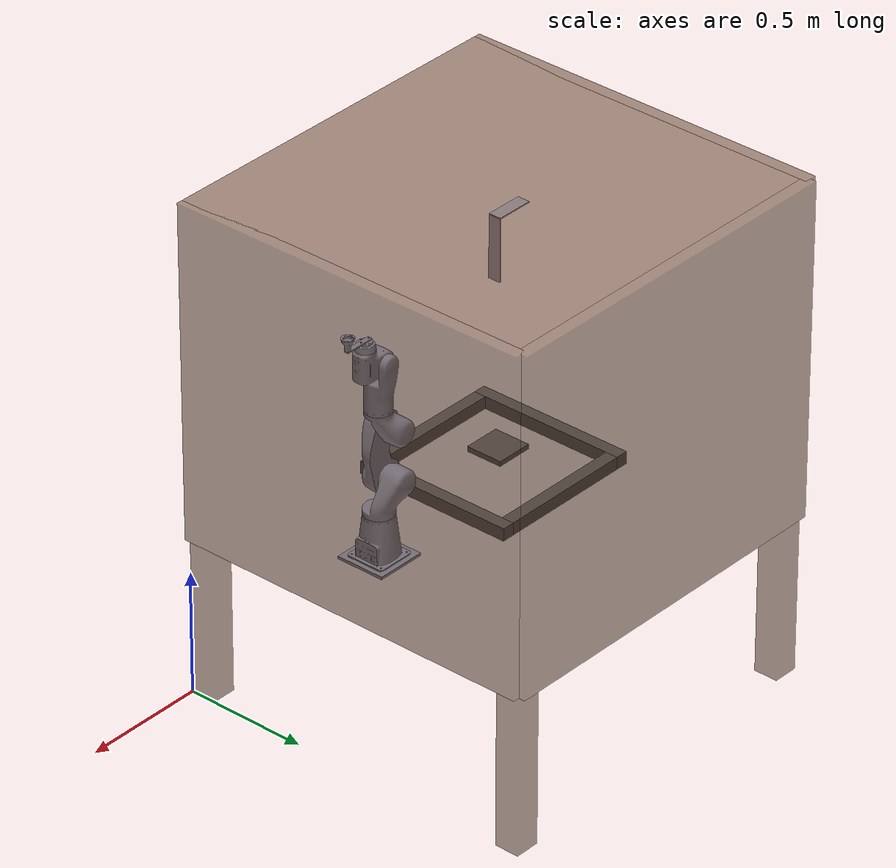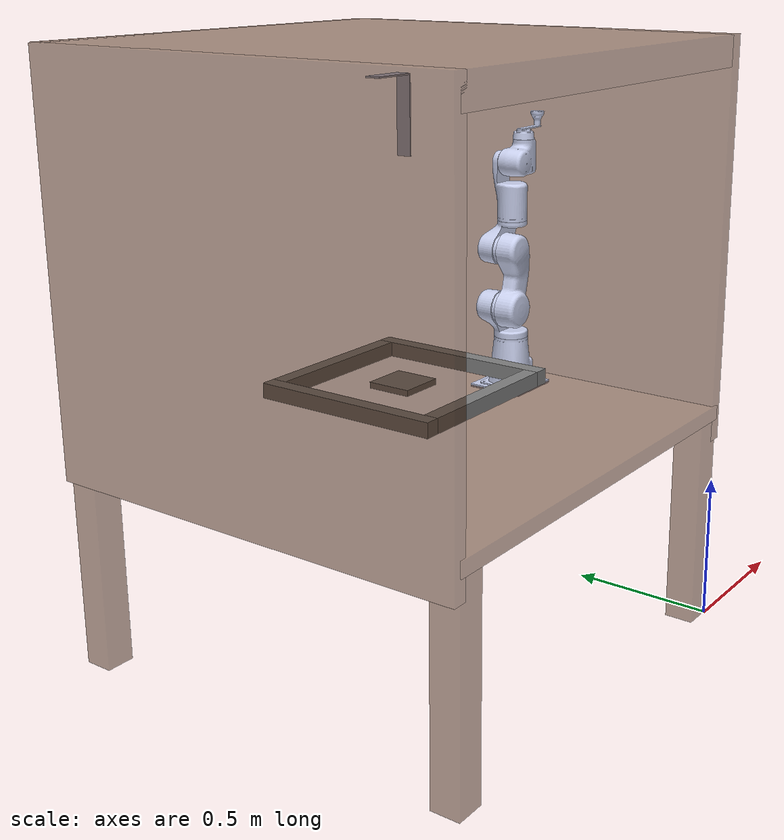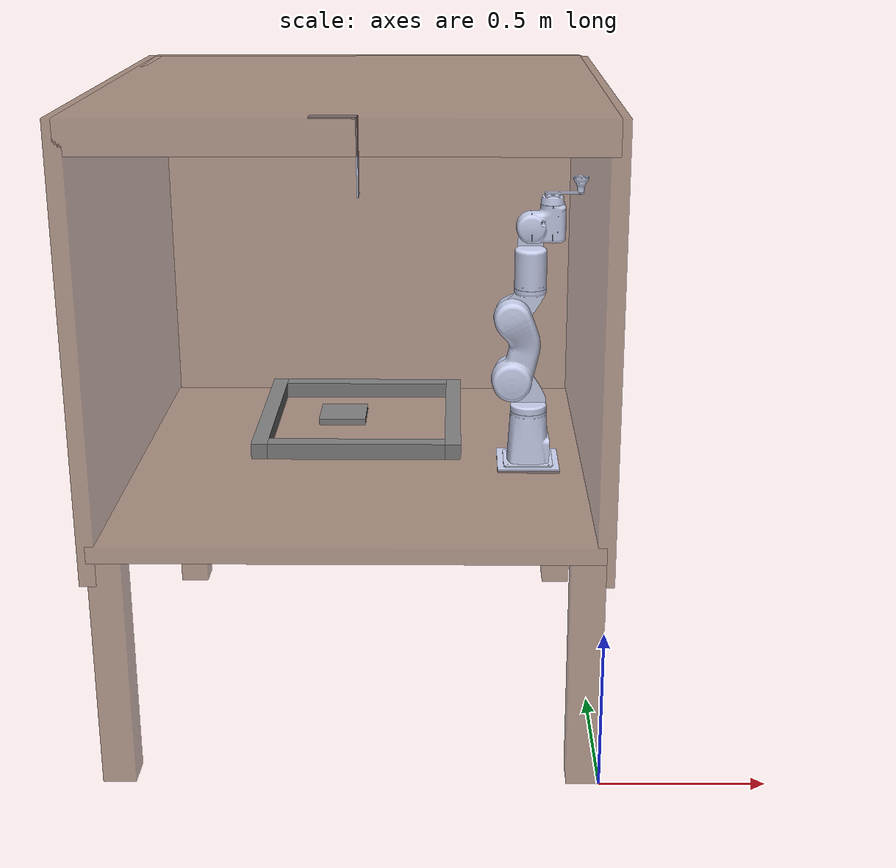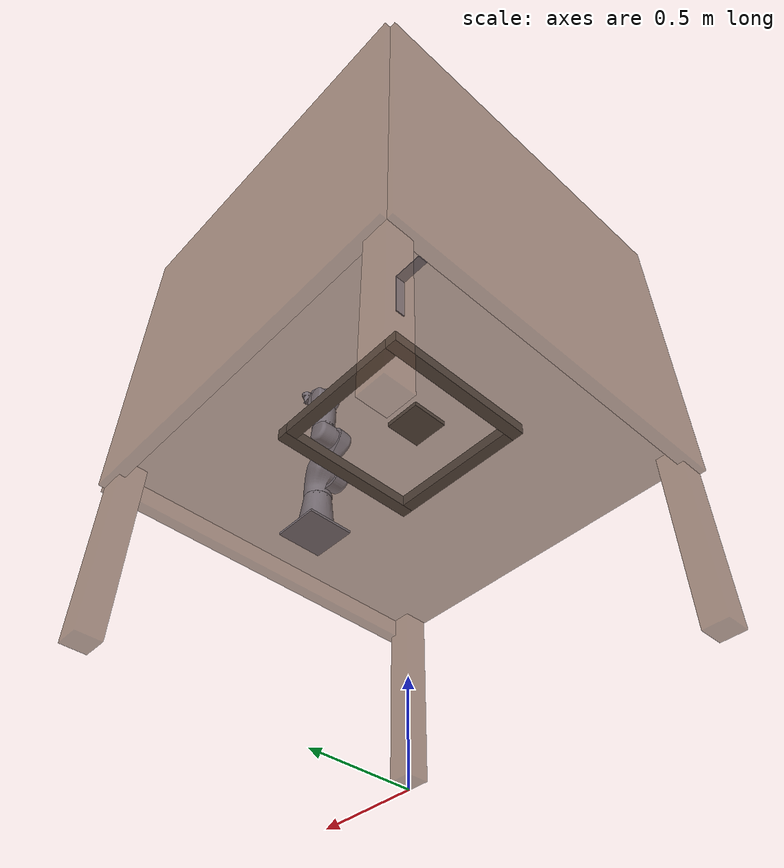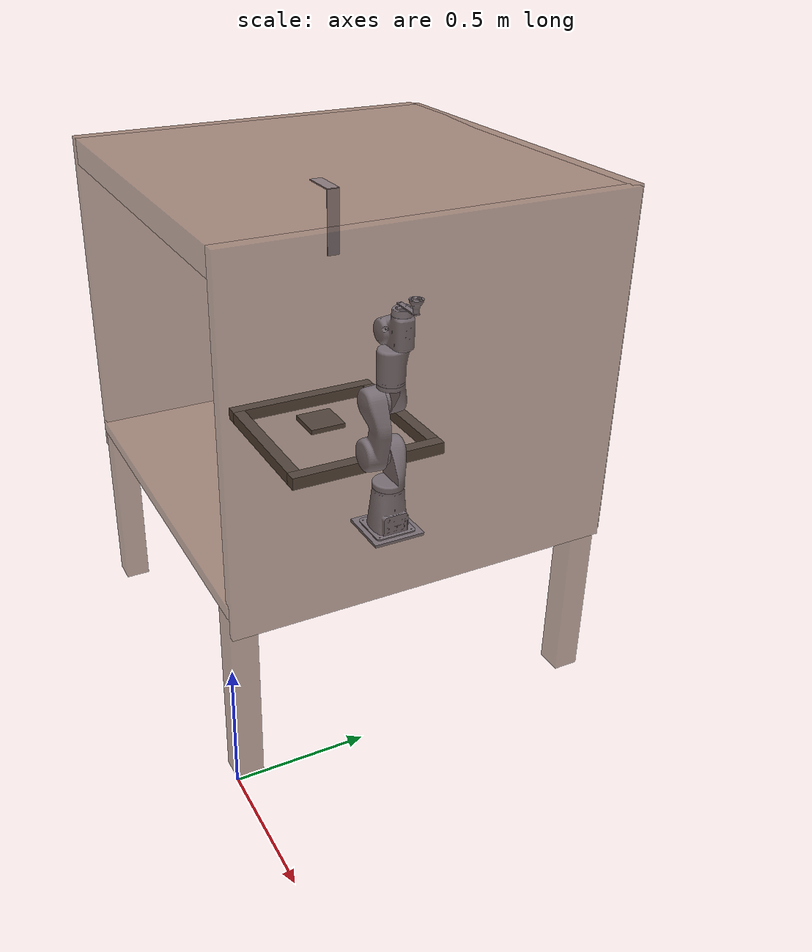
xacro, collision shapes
<?xml version="1.0" ?>
<!-- This file has been used for Hardware, the other "without_rail" files are just used for simulation -->

<robot name="eva_arm">

  <!-- World link -->
  <link name="world"/>

  <!-- Table link: -->
      <!-- The table_link is created such as it has 4 legs and 5 sides, one side is open -->
  <link name="table_link">
    <visual>
      <origin rpy="0 0 0" xyz="-0.75 0.75 1.95"/>
      <geometry>
        <box size="1.5 1.5 0.1"/>
      </geometry>
      <material name="wood">
        <color rgba="0.3 0.15 0.05 0.5"/>  <!--Change alpha value b/w 0 (transparent) and 1(opaque) -->
      </material>
    </visual>

    <visual>
      <origin rpy="0 0 0" xyz="-0.75 0.725 0.75"/>
      <geometry>
        <box size="1.5 1.46 0.05"/>
      </geometry>
      <material name="wood">
        <color rgba="0.55 0.27 0.07 0.1"/>
      </material>
    </visual>

    <visual>
      <origin rpy="0 0 0" xyz="0.0 0.75 1.325"/>
      <geometry>
        <box size="0.05 1.5 1.35"/>
      </geometry>
      <material name="wood">
        <color rgba="0.55 0.27 0.07 0.1"/>
      </material>
    </visual>

    <visual>
      <origin rpy="0 0 0" xyz="-1.5 0.75 1.325"/>
      <geometry>
        <box size="0.05 1.5 1.35"/>
      </geometry>
      <material name="wood">
        <color rgba="0.55 0.27 0.07 0.1"/>
      </material>
    </visual>

    <visual>
      <origin rpy="0 0 0" xyz="-0.75 1.5 1.325"/>
      <geometry>
        <box size="1.5 0.05 1.35"/>
      </geometry>
      <material name="wood">
        <color rgba="0.55 0.27 0.07 0.1"/>
      </material>
    </visual>

    <visual>
      <origin rpy="0 0 0" xyz="-1.45 0.05 0.375"/>
      <geometry>
        <box size="0.1 0.1 0.75"/>
      </geometry>
      <material name="wood">
        <color rgba="0.55 0.27 0.07 1"/>
      </material>
    </visual>

    <visual>
      <origin rpy="0 0 0" xyz="-0.05 0.05 0.375"/>
      <geometry>
        <box size="0.1 0.1 0.75"/>
      </geometry>
      <material name="wood">
        <color rgba="0.55 0.27 0.07 1"/>
      </material>
    </visual>

    <visual>
      <origin rpy="0 0 0" xyz="-0.05 1.45 0.375"/>
      <geometry>
        <box size="0.1 0.1 0.75"/>
      </geometry>
      <material name="wood">
        <color rgba="0.55 0.27 0.07 1"/>
      </material>
    </visual>

    <visual>
      <origin rpy="0 0 0" xyz="-1.45 1.45 0.375"/>
      <geometry>
        <box size="0.1 0.1 0.75"/>
      </geometry>
      <material name="wood">
        <color rgba="0.55 0.27 0.07 1"/>
      </material>
    </visual>

    <!-- Collision elements (mirroring visuals 1:1) -->
    <collision>
      <origin rpy="0 0 0" xyz="-0.75 0.75 1.95"/>
      <geometry>
        <box size="1.5 1.5 0.1"/>
      </geometry>
    </collision>

    <collision>
      <origin rpy="0 0 0" xyz="-0.75 0.725 0.75"/>
      <geometry>
        <box size="1.5 1.46 0.05"/>
      </geometry>
    </collision>

    <collision>
      <origin rpy="0 0 0" xyz="0.0 0.75 1.325"/>
      <geometry>
        <box size="0.05 1.5 1.35"/>
      </geometry>
    </collision>

    <collision>
      <origin rpy="0 0 0" xyz="-1.5 0.75 1.325"/>
      <geometry>
        <box size="0.05 1.5 1.35"/>
      </geometry>
    </collision>

    <collision>
      <origin rpy="0 0 0" xyz="-0.75 1.5 1.325"/>
      <geometry>
        <box size="1.5 0.05 1.35"/>
      </geometry>
    </collision>

    <collision>
      <origin rpy="0 0 0" xyz="-1.45 0.05 0.375"/>
      <geometry>
        <box size="0.1 0.1 0.75"/>
      </geometry>
    </collision>

    <collision>
      <origin rpy="0 0 0" xyz="-0.05 0.05 0.375"/>
      <geometry>
        <box size="0.1 0.1 0.75"/>
      </geometry>
    </collision>

    <collision>
      <origin rpy="0 0 0" xyz="-0.05 1.45 0.375"/>
      <geometry>
        <box size="0.1 0.1 0.75"/>
      </geometry>
    </collision>

    <collision>
      <origin rpy="0 0 0" xyz="-1.45 1.45 0.375"/>
      <geometry>
        <box size="0.1 0.1 0.75"/>
      </geometry>
    </collision>

    <inertial>
      <origin rpy="0 0 0" xyz="-0.75 0.75 0.75"/>
      <mass value="10.0"/>
      <inertia ixx="0.1" ixy="0.0" ixz="0.0" iyy="0.1" iyz="0.0" izz="0.1"/>
    </inertial>
  </link>

  <joint name="world_to_table_joint" type="fixed">
    <parent link="world"/>
    <child link="table_link"/>
    <origin xyz="0.0 0.0 0.0" rpy="0 0 0"/>
  </joint>

  <!-- XY Plotter -->
      <!-- Boundary - Base Link -->
  <link name="boundary_link">
    <inertial>
      <mass value="10"/>
      <inertia ixx="0.4" ixy="0.0" ixz="0.0" iyy="0.4" iyz="0.0" izz="0.2"/>
    </inertial>
    <!-- Front Boundary -->
    <visual>
      <origin rpy="0 0 0" xyz="0.0 0.30 0.0"/>
      <geometry>
        <box size="0.55 0.05 0.05"/>
      </geometry>
      <material name="grey">
        <color rgba="0.5 0.5 0.5 1"/>
      </material>
    </visual>
    <!-- Back Boundary -->
    <visual>
      <origin rpy="0 0 0" xyz="0.0 -0.30 0.0"/>
      <geometry>
        <box size="0.55 0.05 0.05"/>
      </geometry>
      <material name="grey">
        <color rgba="0.5 0.5 0.5 1"/>
      </material>
    </visual>
    <!-- Left Boundary -->
    <visual>
      <origin rpy="0 0 0" xyz="-0.30 0.0 0.0"/>
      <geometry>
        <box size="0.05 0.65 0.05"/>
      </geometry>
      <material name="grey">
        <color rgba="0.5 0.5 0.5 1"/>
      </material>
    </visual>
    <!-- Right Boundary -->
    <visual>
      <origin rpy="0 0 0" xyz="0.30 0.0 0.0"/>
      <geometry>
        <box size="0.05 0.65 0.05"/>
      </geometry>
      <material name="grey">
        <color rgba="0.5 0.5 0.5 1"/>
      </material>
    </visual>

    <!-- Add collision -->
    <collision>
      <origin xyz="0.0 0.30 0.0"/>
      <geometry>
        <box size="0.55 0.05 0.05"/>
      </geometry>
    </collision>

    <collision>
      <origin xyz="0.0 -0.30 0.0"/>
      <geometry>
        <box size="0.55 0.05 0.05"/>
      </geometry>
    </collision>

    <collision>
      <origin xyz="-0.30 0.0 0.0"/>
      <geometry>
        <box size="0.05 0.65 0.05"/>
      </geometry>
    </collision>

    <collision>
      <origin xyz="0.30 0.0 0.0"/>
      <geometry>
        <box size="0.05 0.65 0.05"/>
      </geometry>
    </collision>
  </link>

  <!-- Link #2 (Slider Link) -->
  <link name="slider_link">
    <inertial>
      <mass value="0.18"/>
      <inertia ixx="0.0002835" ixy="0.0" ixz="0.0" iyy="0.0002835" iyz="0.0" izz="0.000324"/>
    </inertial>
    <collision>
      <geometry>
        <box size="0.001 0.001 0.001" />
      </geometry>
    </collision>
    <visual>
      <geometry>
        <box size="0.001 0.001 0.001"/>
      </geometry>
      <material name="red">
        <color rgba="1 0 0 1"/>
      </material>
    </visual>
  </link>

  <!-- Link #3 (Slider Link) -->
  <link name="second_link">
    <inertial>
      <mass value="0.18"/>
      <inertia ixx="0.0002835" ixy="0.0" ixz="0.0" iyy="0.0002835" iyz="0.0" izz="0.000324"/>
    </inertial>
    <collision>
      <geometry>
        <box size="0.001 0.001 0.001" />
      </geometry>
    </collision>
    <visual>
      <geometry>
        <box size="0.001 0.001 0.001"/>
      </geometry>
      <material name="green">
        <color rgba="0 1 0 1"/>
      </material>
    </visual>
  </link>

  <!-- Link #4 (Plate) -->
  <link name="plate_link">
    <inertial>
      <mass value="0.5"/>
      <inertia ixx="0.01" ixy="0.0" ixz="0.0" iyy="0.01" iyz="0.0" izz="0.01"/>
    </inertial>
    <collision>
      <geometry>
        <box size="0.15 0.15 0.02" />
      </geometry>
    </collision>
    <visual>
      <geometry>
        <box size="0.15 0.15 0.02"/>
      </geometry>
      <material name="gray">
        <color rgba="0.5 0.5 0.5 1"/>
      </material>
    </visual>
  </link>

  <!-- Joint for Base of the XY Plotter and Table -->
  <joint name="connect_table_link_and_boundary_link" type="fixed">
    <child link="boundary_link"/>
    <parent link="table_link"/>
    <origin rpy="0 0 0" xyz="-0.745 0.745 0.91"/>
  </joint>
  <!-- Joint for X-axis (Base to Slider) -->
  <joint name="base_to_slider_joint" type="prismatic">
    <parent link="boundary_link"/>
    <child link="slider_link"/>
    <axis xyz="1 0 0"/>
    <origin rpy="0.0 0.0 0.0" xyz="-0.0575 -0.03 0.02"/>
    <limit effort="100.0" lower="-0.25" upper="0.25" velocity="1.0"/>
  </joint>
  <!-- Joint for Y-axis (Slider to Second Link) -->
  <joint name="slider_to_second_joint" type="prismatic">
    <parent link="slider_link"/>
    <child link="second_link"/>
    <axis xyz="0 1 0"/>
    <origin rpy="0.0 0.0 0.0" xyz="0.0 0.0 0"/>
    <limit effort="100.0" lower="-0.25" upper="0.25" velocity="1.0"/>
  </joint>
  <!-- Fixed Joint: Attach Plate to Second Link -->
  <joint name="second_to_plate_joint" type="fixed">
    <parent link="second_link"/>
    <child link="plate_link"/>
    <origin rpy="0.0 0.0 0.0" xyz="0.0 0.0 0.0"/>
  </joint>

  <!-- Square Plate - robotic arm base plate-->
  <link name="square_plate_link">
    <visual>
      <origin rpy="0 0 0" xyz="0 0 0"/>
      <geometry>
        <box size="0.2 0.2 0.011"/>
      </geometry>
      <material name="">
        <color rgba="0.79216 0.81961 0.93333 1"/>
      </material>
    </visual>

    <collision>
      <origin rpy="0 0 0" xyz="0 0 0"/>
      <geometry>
        <box size="0.2 0.2 0.011"/>
      </geometry>
    </collision>

    <inertial>
      <origin rpy="0 0 0" xyz="0 0 0"/>
      <mass value="1.0"/>
      <inertia
        ixx="0.000208" ixy="0.0" ixz="0.0"
        iyy="0.000208" iyz="0.0"
        izz="0.0004"/>
    </inertial>
  </link>

  <!-- Joint to attach plate to your structure -->
  <joint name="table_to_square_plate_link" type="fixed">
    <parent link="table_link"/>
    <child link="square_plate_link"/>
    <origin rpy="0 0 0" xyz="-0.2 0.7 0.775"/>
  </joint>

  <!-- All the links and joints of the Robotic Arm -->
  <link name="base_link">
    <gravity>0</gravity>
    <inertial>
      <origin rpy="0 0 0" xyz="-0.00079256 0.072247 -4.2906E-06"/>
      <mass value="2.2163"/>
      <inertia ixx="0.0065308" ixy="-2.9126E-05" ixz="-1.2386E-06" iyy="0.0051738" iyz="-5.4387E-07" izz="0.0065939"/>
    </inertial>

    <visual>
      <origin rpy="0 0 0" xyz="0 0 0"/>
      <geometry>
        <mesh filename="package://eva_description/meshes/base_link.STL"/>
      </geometry>
      <material name="">
        <color rgba="0.79216 0.81961 0.93333 1"/>
      </material>
    </visual>

    <collision>
      <origin rpy="0 0 0" xyz="0 0 0"/>
      <geometry>
        <mesh filename="package://eva_description/meshes/base_link.STL"/>
      </geometry>
    </collision>
  </link>

  <joint name="square_plate_to_base_link" type="fixed">
    <origin rpy="0 0 3.14159" xyz="0 0 0.0055"/>
    <parent link="square_plate_link"/>
    <child link="base_link"/>
  </joint>

  <link name="link1">
    <gravity>0</gravity>
    <inertial>
      <origin rpy="0 0 0" xyz="0.033792 0.10158 0.028608"/>
      <mass value="1.3679"/>
      <inertia ixx="0.0024595" ixy="-0.0008869" ixz="-0.00013245" iyy="0.0021904" iyz="-0.00017806" izz="0.00385"/>
    </inertial>

    <visual>
      <origin rpy="0 0 0" xyz="0 0 0"/>
      <geometry>
        <mesh filename="package://eva_description/meshes/link1.STL"/>
      </geometry>
      <material name="">
        <color rgba="0.79216 0.81961 0.93333 1"/>
      </material>
    </visual>

    <collision>
      <origin rpy="0 0 0" xyz="0 0 0"/>
      <geometry>
        <mesh filename="package://eva_description/meshes/link1.STL"/>
      </geometry>
    </collision>
  </link>

  <joint name="joint01" type="revolute">
    <origin rpy="1.5708 0 0" xyz="0 0 0.151"/>
    <parent link="base_link"/>
    <child link="link1"/>
    <axis xyz="0 1 0"/>
    <limit effort="100" lower="-3.12414" upper="3.12414" velocity="2.16"/>
    <dynamics damping="0.8" friction="10"/>
  </joint>

  <link name="link2">
    <gravity>0</gravity>
    <inertial>
      <origin rpy="0 0 0" xyz="-0.011054 0.095532 -0.041105"/>
      <mass value="2.1464"/>
      <inertia ixx="0.019567" ixy="0.00037463" ixz="0.00015985" iyy="0.0033754" iyz="-7.8572E-05" izz="0.021425"/>
    </inertial>

    <visual>
      <origin rpy="0 0 0" xyz="0 0 0"/>
      <geometry>
        <mesh filename="package://eva_description/meshes/link2.STL"/>
      </geometry>
      <material name="">
        <color rgba="0.79216 0.81961 0.93333 1"/>
      </material>
    </visual>

    <collision>
      <origin rpy="0 0 0" xyz="0 0 0"/>
      <geometry>
        <mesh filename="package://eva_description/meshes/link2.STL"/>
      </geometry>
    </collision>
  </link>

  <joint name="joint12" type="revolute">
    <origin rpy="0 0 0" xyz="0.056 0.1323 0"/>
    <parent link="link1"/>
    <child link="link2"/>
    <axis xyz="0 0 1"/>
    <limit effort="150" lower="-2.70526" upper="1.22173" velocity="1.0"/>
    <dynamics damping="0.8" friction="10"/>
  </joint>

  <link name="link3">
    <gravity>0</gravity>
    <inertial>
      <origin rpy="0 0 0" xyz="-0.017599 0.021043 0.028835"/>
      <mass value="1.0412"/>
      <inertia ixx="0.0014019" ixy="0.0004906" ixz="-9.7827E-05" iyy="0.0013971" iyz="0.00010907" izz="0.0022277"/>
    </inertial>

    <visual>
      <origin rpy="0 0 0" xyz="0 0 0"/>
      <geometry>
        <mesh filename="package://eva_description/meshes/link3.STL"/>
      </geometry>
      <material name="">
        <color rgba="0.79216 0.81961 0.93333 1"/>
      </material>
    </visual>

    <collision>
      <origin rpy="0 0 0" xyz="0 0 0"/>
      <geometry>
        <mesh filename="package://eva_description/meshes/link3.STL"/>
      </geometry>
    </collision>
  </link>

  <joint name="joint23" type="revolute">
    <origin rpy="0 0 0" xyz="0 0.205 0"/>
    <parent link="link2"/>
    <child link="link3"/>
    <axis xyz="0 0 1"/>
    <limit effort="100" lower="-2.79253" upper="0.785398" velocity="1"/>
    <dynamics damping="0.8" friction="10"/>
  </joint>

  <link name="link4">
    <gravity>0</gravity>
    <inertial>
      <origin rpy="0 0 0" xyz="6.3485E-05 0.082453 -0.0083688"/>
      <mass value="1.2151"/>
      <inertia ixx="0.0030376" ixy="-7.1559E-06" ixz="8.224E-07" iyy="0.0010632" iyz="0.00042179" izz="0.0034635"/>
    </inertial>

    <visual>
      <origin rpy="0 0 0" xyz="0 0 0"/>
      <geometry>
        <mesh filename="package://eva_description/meshes/link4.STL"/>
      </geometry>
      <material name="">
        <color rgba="0.79216 0.81961 0.93333 1"/>
      </material>
    </visual>

    <collision>
      <origin rpy="0 0 0" xyz="0 0 0"/>
      <geometry>
        <mesh filename="package://eva_description/meshes/link4.STL"/>
      </geometry>
    </collision>
  </link>

  <joint name="joint34" type="revolute">
    <origin rpy="3.1416 0 3.1416" xyz="-0.056 0.09401 0"/>
    <parent link="link3"/>
    <child link="link4"/>
    <axis xyz="0 1 0"/>
    <limit effort="30" lower="-3.12414" upper="3.12414" velocity="1"/>
    <dynamics damping="0.8" friction="10"/>
  </joint>

  <link name="link5">
    <gravity>0</gravity>
    <inertial>
      <origin rpy="0 0 0" xyz="0.033633 0.0068289 0.0038977"/>
      <mass value="1.1633"/>
      <inertia ixx="0.0014093" ixy="-7.9912E-05" ixz="1.6075E-05" iyy="0.00064393" iyz="7.6612E-06" izz="0.0012682"/>
    </inertial>

    <visual>
      <origin rpy="0 0 0" xyz="0 0 0"/>
      <geometry>
        <mesh filename="package://eva_description/meshes/link5.STL"/>
      </geometry>
      <material name="">
        <color rgba="0.79216 0.81961 0.93333 1"/>
      </material>
    </visual>

    <collision>
      <origin rpy="0 0 0" xyz="0 0 0"/>
      <geometry>
        <mesh filename="package://eva_description/meshes/link5.STL"/>
      </geometry>
    </collision>
  </link>

  <joint name="joint45" type="revolute">
    <origin rpy="0 0 0" xyz="0 0.1966 0"/>
    <parent link="link4"/>
    <child link="link5"/>
    <axis xyz="0 0 1"/>
    <limit effort="45" lower="-0.174533" upper="2.70526" velocity="1"/>
    <dynamics damping="0.8" friction="10"/>
  </joint>

  <link name="link6">
    <gravity>0</gravity>
    <inertial>
      <origin rpy="0 0 0" xyz="0.00010738 0.012024 3.1104E-05"/>
      <mass value="0.089988"/>
      <inertia ixx="3.1549E-05" ixy="9.9188E-08" ixz="-3.6831E-08" iyy="5.6401E-05" iyz="-1.5979E-09" izz="3.1789E-05"/>
    </inertial>

    <visual>
      <origin rpy="0 0 0" xyz="0 0 0"/>
      <geometry>
        <mesh filename="package://eva_description/meshes/link6.STL"/>
      </geometry>
      <material name="">
        <color rgba="0.79216 0.81961 0.93333 1"/>
      </material>
    </visual>

    <collision>
      <origin rpy="0 0 0" xyz="0 0 0"/>
      <geometry>
        <mesh filename="package://eva_description/meshes/link6.STL"/>
      </geometry>
    </collision>
  </link>

  <joint name="joint56" type="revolute">
    <origin rpy="0 0 0" xyz="0.065 0.0741 0"/>
    <parent link="link5"/>
    <child link="link6"/>
    <axis xyz="0 1 0"/>
    <limit effort="30" lower="-3.12414" upper="3.12414" velocity="1"/>
    <dynamics damping="0.8" friction="10"/>
  </joint>

  <link name="light_link">
    <gravity>0</gravity>
    <inertial>
      <origin rpy="0 0 0" xyz="0.000 0.0 0.0"/>
      <mass value="0.089988"/>
      <inertia ixx="3.1549E-05" ixy="9.9188E-08" ixz="-3.6831E-08" iyy="5.6401E-05" iyz="-1.5979E-09" izz="3.1789E-05"/>
    </inertial>

    <visual>
      <origin rpy="0 0 0" xyz="0 0 0"/>
      <geometry>
        <mesh filename="package://eva_description/meshes/Led_plate_assembly.STL" scale="0.001 0.001 0.001"/>
      </geometry>
      <material name="">
        <color rgba="0.79216 0.81961 0.93333 1"/>
      </material>
    </visual>

    <collision>
      <origin rpy="0 0 0" xyz="0 0 0"/>
      <geometry>
        <mesh filename="package://eva_description/meshes/Led_plate_assembly.STL" scale="0.001 0.001 0.001"/>
      </geometry>
    </collision>
  </link>

  <joint name="joint67" type="fixed">
    <origin rpy="-1.5707963267948966 0.0 0.0" xyz="-0.025 0.028 0.025"/>
    <parent link="link6"/>
    <child link="light_link"/>
  </joint>

  <link name="ee_link"/>

  <joint name="ee_link_joint" type="fixed">
    <origin rpy="-1.5707963267948966 3.141592653589793 0" xyz="0.11 0.025 0.06"/>
    <parent link="light_link"/>
    <child link="ee_link"/>
  </joint>

  <!-- Camera holder Link -->
  <link name="L_shape">
    <visual>
      <origin xyz="-0.0745 0 0.125" rpy="0 0 0"/>
      <geometry>
        <box size="0.15 0.05 0.005"/>
      </geometry>
      <material name="">
        <color rgba="0.79216 0.81961 0.93333 1"/>
      </material>
    </visual>
    <collision>
      <origin xyz="-0.0745 0 0.125" rpy="0 0 0"/>
      <geometry>
        <box size="0.15 0.05 0.005"/>
      </geometry>
    </collision>

    <visual>
      <origin xyz="0 0 0" rpy="0 1.5708 0"/>
      <geometry>
        <box size="0.25 0.05 0.005"/>
      </geometry>
      <material name="">
        <color rgba="0.79216 0.81961 0.93333 1"/>
      </material>
    </visual>
    <collision>
      <origin xyz="0 0 0" rpy="0 1.5708 0"/>
      <geometry>
        <box size="0.25 0.05 0.005"/>
      </geometry>
    </collision>

  </link>

  <joint name="L_shape_joint_with_table" type="fixed">
    <parent link="table_link"/>
    <child link="L_shape"/>
    <origin xyz="-0.745 0.745 1.77" rpy="0 0 0"/>
  </joint>

  <!-- Camera Top-->
  <link name="camera_link">
    <visual>
      <geometry>
        <mesh filename="package://eva_description/meshes/Manta_TypeB_C-Mount.stl" scale="0.002 0.002 0.002"/>
      </geometry>
    </visual>
    <material name="">
        <color rgba="0.79216 0.81961 0.93333 1"/>
    </material>
  </link>

  <link name="camera_link_optical"></link>

  <joint name="camera_joint" type="fixed">
      <parent link="table_link"/>
      <child link="camera_link"/>
      <origin xyz="-0.715 0.745 1.64" rpy="0 0 1.5708"/>
  </joint>

  <joint name="camera_optical_joint" type="fixed">
      <parent link="camera_link"/>
      <child link="camera_link_optical"/>
      <origin xyz="0 0 0" rpy="0 0 0"/>
  </joint>

</robot>
